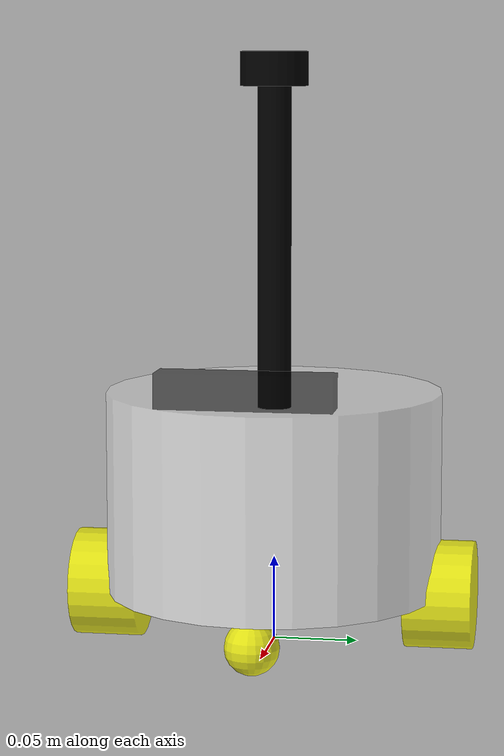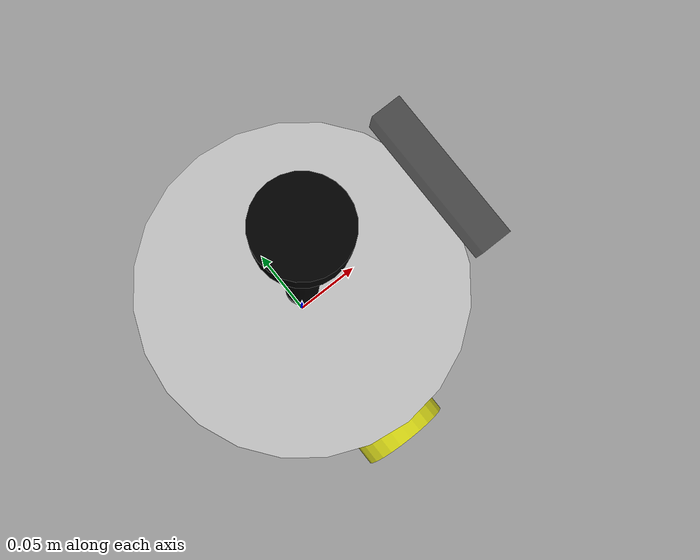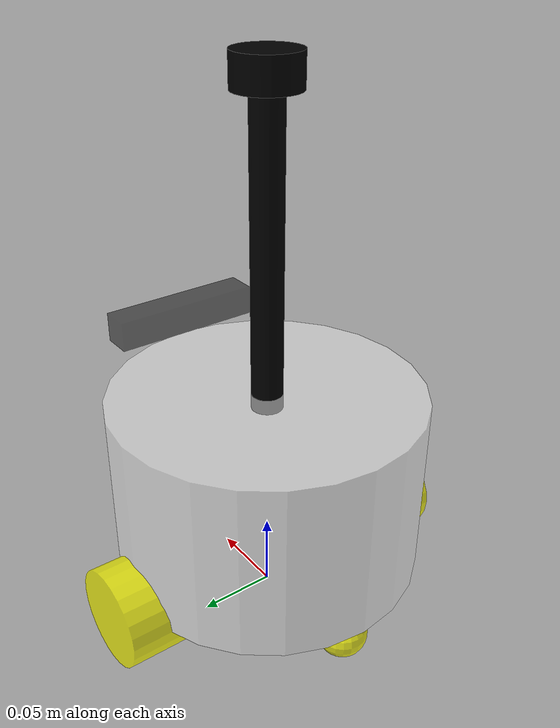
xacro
<?xml version="1.0"?>
<robot xmlns:xacro="http://www.ros.org/wiki/xacro" name="fishbot">

<!-- base_link-->
<xacro:include filename="$(find fishbot_description)/urdf/fishbot/base.urdf.xacro"/>

<!-- sensor -->
<xacro:include filename="$(find fishbot_description)/urdf/fishbot/sensor/imu.urdf.xacro"/>
<xacro:include filename="$(find fishbot_description)/urdf/fishbot/sensor/camera.urdf.xacro"/>
<xacro:include filename="$(find fishbot_description)/urdf/fishbot/sensor/lidar.urdf.xacro"/>
<!-- actuator -->
<xacro:include filename="$(find fishbot_description)/urdf/fishbot/actuator/wheel.urdf.xacro"/>
<xacro:include filename="$(find fishbot_description)/urdf/fishbot/actuator/caster.urdf.xacro"/>
<!-- plugin -->
<xacro:include filename="$(find fishbot_description)/urdf/fishbot/plugins/gazebo_control_plugin.xacro"/>
<xacro:include filename="$(find fishbot_description)/urdf/fishbot/plugins/gazebo_sensor_plugin.xacro"/>
<xacro:include filename="$(find fishbot_description)/urdf/fishbot/fishbot.ros2_control.xacro"/>

<xacro:base_xacro length="0.12" radius="0.10"/>
<xacro:imu_xacro xyz="0.0 0.0 0.02"/>
<xacro:camera_xacro xyz="0.10 0.0 0.075"/>
<xacro:lidar_xacro xyz="0.0 0.0 0.15"/>

<xacro:wheel_xacro wheel_name="left_wheel" xyz="0 0.10 -0.06"/>
<xacro:wheel_xacro wheel_name="right_wheel" xyz="0 -0.10 -0.06"/>
<xacro:caster_xacro caster_name="front_caster" xyz="0.08 0.0 -0.076"/>
<xacro:caster_xacro caster_name="back_caster" xyz="-0.08 0.0 -0.076"/>

<xacro:gazebo_sensor_plugin />
<xacro:fishbot_ros2_control />

</robot>

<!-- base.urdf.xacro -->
<robot xmlns:xacro="http://www.ros.org/wiki/xacro">
    <xacro:include filename="$(find fishbot_description)/urdf/fishbot/commen_inertia.xacro"/>

    <xacro:macro name="base_xacro" params="length radius">
        <link name="base_footprint" />

        <!-- 机器人身体部分 -->
            <link name="base_link">
                <!-- 部件的外观描述 -->
                <visual>
                    <!-- 沿着自己几何中心的偏移及旋转 -->
                    <origin xyz="0.0 0.0 0.0" rpy="0.0 0.0 0.0"/>
                    <!-- 几何形状 -->
                    <geometry>
                        <!-- 圆柱体 半径0.1m 高度0.12m -->
                        <cylinder radius="${radius}" length="${length}"/>
                    </geometry>
                    <!-- 材质颜色 -->
                    <material name="white">
                        <color rgba="1.0 1.0 1.0 0.5"/>
                    </material>
                </visual>
                <!-- 机器人碰撞体积 -->
                <collision>
                    <origin xyz="0.0 0.0 0.0" rpy="0.0 0.0 0.0"/>
                    <geometry>
                        <cylinder radius="${radius}" length="${length}"/>
                    </geometry>
                    <material name="white">
                        <color rgba="1.0 1.0 1.0 0.5"/>
                    </material>
                </collision>

                <xacro:cylinder_inertia m="1.0" r="${radius}" h="${length}" />
            </link>

            <joint name="joint_name" type="fixed">
                <origin xyz="0.0 0.0 ${length/2.0+0.032-0.001}" rpy="0.0 0.0 0.0"/>
                <parent link="base_footprint"/>
                <child link="base_link"/>
            </joint>
    </xacro:macro>
</robot>

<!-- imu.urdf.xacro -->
<robot xmlns:xacro="http://www.ros.org/wiki/xacro">
    <xacro:include filename="$(find fishbot_description)/urdf/fishbot/commen_inertia.xacro"/>

    <xacro:macro name="imu_xacro" params="xyz">
    <!-- 机器人的惯性测量单元 IMU -->
    <link name="imu_link">
        <!-- 部件的外观描述 -->
        <visual>
            <!-- 沿着自己几何中心的偏移及旋转 -->
            <origin xyz="0.0 0.0 0.0" rpy="0.0 0.0 0.0"/>
            <!-- 几何形状 -->
            <geometry>
               <box size="0.02 0.02 0.02"/>
            </geometry>
            <!-- 材质颜色 -->
            <material name="black">
                <color rgba="0.0 0.0 0.0 0.5"/>
            </material>
        </visual>

        <collision>
            <!-- 沿着自己几何中心的偏移及旋转 -->
            <origin xyz="0.0 0.0 0.0" rpy="0.0 0.0 0.0"/>
            <!-- 几何形状 -->
            <geometry>
               <box size="0.02 0.02 0.02"/>
            </geometry>
            <!-- 材质颜色 -->
            <material name="black">
                <color rgba="0.0 0.0 0.0 0.5"/>
            </material>
        </collision>

         <xacro:box_inertia m="0.05" w="0.02" h="0.02" d="0.02" />

    </link>

     <!-- 机器人关节 -->
    <joint name="imu_joint" type="fixed">
        <origin xyz="${xyz}" rpy="0.0 0.0 0.0"/>
        <parent link="base_link"/>
        <child link="imu_link"/>
    </joint>

    </xacro:macro>

</robot>

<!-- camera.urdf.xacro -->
<robot xmlns:xacro="http://www.ros.org/wiki/xacro">
    <xacro:include filename="$(find fishbot_description)/urdf/fishbot/commen_inertia.xacro"/>

    <xacro:macro name="camera_xacro" params="xyz">
    <link name="camera_link">
        <!-- 部件的外观描述 -->
        <visual>
            <!-- 沿着自己几何中心的偏移及旋转 -->
            <origin xyz="0.0 0.0 0.0" rpy="0.0 0.0 0.0"/>
            <!-- 几何形状 -->
            <geometry>
               <box size="0.02 0.10 0.02"/>
            </geometry>
            <!-- 材质颜色 -->
            <material name="black">
                <color rgba="0.0 0.0 0.0 0.5"/>
            </material>
        </visual>

        <collision>
            <!-- 沿着自己几何中心的偏移及旋转 -->
            <origin xyz="0.0 0.0 0.0" rpy="0.0 0.0 0.0"/>
            <!-- 几何形状 -->
            <geometry>
               <box size="0.02 0.10 0.02"/>
            </geometry>
            <!-- 材质颜色 -->
            <material name="black">
                <color rgba="0.0 0.0 0.0 0.5"/>
            </material>
        </collision>
         <xacro:box_inertia m="0.1" w="0.02" h="0.10" d="0.02" />

    </link>

    <link name="camera_optical_link"></link>

     <!-- 机器人关节 -->
    <joint name="camera_joint" type="fixed">
        <origin xyz="${xyz}" rpy="0.0 0.0 0.0"/>
        <parent link="base_link"/>
        <child link="camera_link"/>
    </joint>

      <!-- 机器人关节 -->
    <joint name="camera_optical_link" type="fixed">
        <origin xyz="0 0 0" rpy="${-pi/2} 0.0 ${-pi/2} "/>
        <parent link="camera_link"/>
        <child link="camera_optical_link"/>
    </joint>

    </xacro:macro>

</robot>

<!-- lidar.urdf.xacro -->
<robot xmlns:xacro="http://www.ros.org/wiki/xacro">
    <xacro:include filename="$(find fishbot_description)/urdf/fishbot/commen_inertia.xacro"/>

    <xacro:macro name="lidar_xacro" params="xyz">
    <!-- 雷达支撑杆 -->
    <link name="lidar_cylinder_link">
        <!-- 部件的外观描述 -->
        <visual>
            <!-- 沿着自己几何中心的偏移及旋转 -->
            <origin xyz="0.0 0.0 0.0" rpy="0.0 0.0 0.0"/>
            <!-- 几何形状 -->
            <geometry>
                <cylinder radius="0.01" length="0.20"/>
            </geometry>
            <!-- 材质颜色 -->
            <material name="black">
                <color rgba="0.0 0.0 0.0 1.0"/>
            </material>
        </visual>

        <collision>
         <!-- 沿着自己几何中心的偏移及旋转 -->
            <origin xyz="0.0 0.0 0.0" rpy="0.0 0.0 0.0"/>
            <!-- 几何形状 -->
            <geometry>
                <cylinder radius="0.01" length="0.10"/>
            </geometry>
            <!-- 材质颜色 -->
            <material name="black">
                <color rgba="0.0 0.0 0.0 1.0"/>
            </material>
        </collision>

        <xacro:cylinder_inertia m="0.05" r="0.01" h="0.10" />

    </link>

    <!-- 雷达 -->
    <link name="lidar_link">
        <!-- 部件的外观描述 -->
        <visual>
            <!-- 沿着自己几何中心的偏移及旋转 -->
            <origin xyz="0.0 0.0 0.0" rpy="0.0 0.0 0.0"/>
            <!-- 几何形状 -->
            <geometry>
                <cylinder radius="0.02" length="0.02"/>
            </geometry>
            <!-- 材质颜色 -->
            <material name="black">
                <color rgba="0.0 0.0 0.0 1.0"/>
            </material>
        </visual>

        <collision>
            <!-- 沿着自己几何中心的偏移及旋转 -->
            <origin xyz="0.0 0.0 0.0" rpy="0.0 0.0 0.0"/>
            <!-- 几何形状 -->
            <geometry>
                <cylinder radius="0.02" length="0.02"/>
            </geometry>
            <!-- 材质颜色 -->
            <material name="black">
                <color rgba="0.0 0.0 0.0 1.0"/>
            </material>
        </collision>

        <xacro:cylinder_inertia m="0.10" r="0.02" h="0.02" />

    </link>

     <!-- 机器人关节 -->
    <joint name="lidar_joint" type="fixed">
        <origin xyz="0.0 0.0 0.1" rpy="0.0 0.0 0.0"/>
        <parent link="lidar_cylinder_link"/>
        <child link="lidar_link"/>
    </joint>

    <joint name="lidar_cylinder_joint" type="fixed">
        <origin xyz="${xyz}" rpy="0.0 0.0 0.0"/>
        <parent link="base_link"/>
        <child link="lidar_cylinder_link"/>
    </joint>

    <gazebo reference='lidar_cylinder_link'>
             <material>Gazebo/Black</material>
     </gazebo>
    <gazebo reference='lidar_link'>
               <material>Gazebo/Black</material>
        </gazebo>
    </xacro:macro>

</robot>

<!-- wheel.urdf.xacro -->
<robot xmlns:xacro="http://www.ros.org/wiki/xacro">
    <xacro:include filename="$(find fishbot_description)/urdf/fishbot/commen_inertia.xacro"/>

    <xacro:macro name="wheel_xacro" params="wheel_name xyz">
    <!-- 机器人的惯性测量单元 IMU -->
    <link name="${wheel_name}_link">
        <!-- 部件的外观描述 -->
        <visual>
            <!-- 沿着自己几何中心的偏移及旋转 -->
            <origin xyz="0.0 0.0 0.0" rpy="1.57079 0.0 0.0"/>
            <!-- 几何形状 -->
            <geometry>
               <cylinder radius="0.032" length="0.04"/>
            </geometry>
            <!-- 材质颜色 -->
            <material name="yellow">
                <color rgba="1.0 1.0 0.0 0.8"/>
            </material>
        </visual>

        <collision>
             <!-- 沿着自己几何中心的偏移及旋转 -->
            <origin xyz="0.0 0.0 0.0" rpy="1.57079 0.0 0.0"/>
            <!-- 几何形状 -->
            <geometry>
               <cylinder radius="0.032" length="0.04"/>
            </geometry>
            <!-- 材质颜色 -->
            <material name="yellow">
                <color rgba="1.0 1.0 0.0 0.8"/>
            </material>
        </collision>

        <xacro:cylinder_inertia m="0.05" r="0.032" h="0.04" />
    </link>

     <!-- 机器人关节 -->
    <joint name="${wheel_name}_joint" type="continuous">
        <origin xyz="${xyz}" rpy="0.0 0.0 0.0"/>
        <parent link="base_link"/>
        <child link="${wheel_name}_link"/>
        <axis xyz="0 1 0"/>
    </joint>

    <gazebo reference="${wheel_name}_link">
             <mu1 value="20.0"/>
             <mu2 value="20.0"/>
             <kp value="1000000000.0"/>
             <kd value="1.0"/>
     </gazebo>

     <gazebo reference='{wheel_name}_link'>
             <material>Gazebo/Black</material>
     </gazebo>

    </xacro:macro>

</robot>

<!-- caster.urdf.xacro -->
<robot xmlns:xacro="http://www.ros.org/wiki/xacro">
    <xacro:include filename="$(find fishbot_description)/urdf/fishbot/commen_inertia.xacro"/>

    <xacro:macro name="caster_xacro" params="caster_name xyz">

    <link name="${caster_name}_link">
        <!-- 部件的外观描述 -->
        <visual>
            <!-- 沿着自己几何中心的偏移及旋转 -->
            <origin xyz="0.0 0.0 0.0" rpy="0.0 0.0 0.0"/>
            <!-- 几何形状 -->
            <geometry>
               <sphere radius="0.016"/>
            </geometry>
            <!-- 材质颜色 -->
            <material name="yellow">
                <color rgba="1.0 1.0 0.0 0.8"/>
            </material>
        </visual>

        <collision>
            <!-- 沿着自己几何中心的偏移及旋转 -->
            <origin xyz="0.0 0.0 0.0" rpy="0.0 0.0 0.0"/>
            <!-- 几何形状 -->
            <geometry>
               <sphere radius="0.016"/>
            </geometry>
            <!-- 材质颜色 -->
            <material name="yellow">
                <color rgba="1.0 1.0 0.0 0.8"/>
            </material>
        </collision>

        <xacro:sphere_inertia m="0.05" r="0.016" />
    </link>

     <!-- 机器人关节 -->
    <joint name="${caster_name}_joint" type="fixed">
        <origin xyz="${xyz}" rpy="0.0 0.0 0.0"/>
        <parent link="base_link"/>
        <child link="${caster_name}_link"/>
    </joint>

     <gazebo reference="${caster_name}_link">
             <mu1 value="0.0"/>
             <mu2 value="0.0"/>
             <kp value="1000000000.0"/>
             <kd value="1.0"/>
    </gazebo>

    <gazebo reference='{caster_name}_link'>
             <material>Gazebo/Black</material>
     </gazebo>

    </xacro:macro>

</robot>
